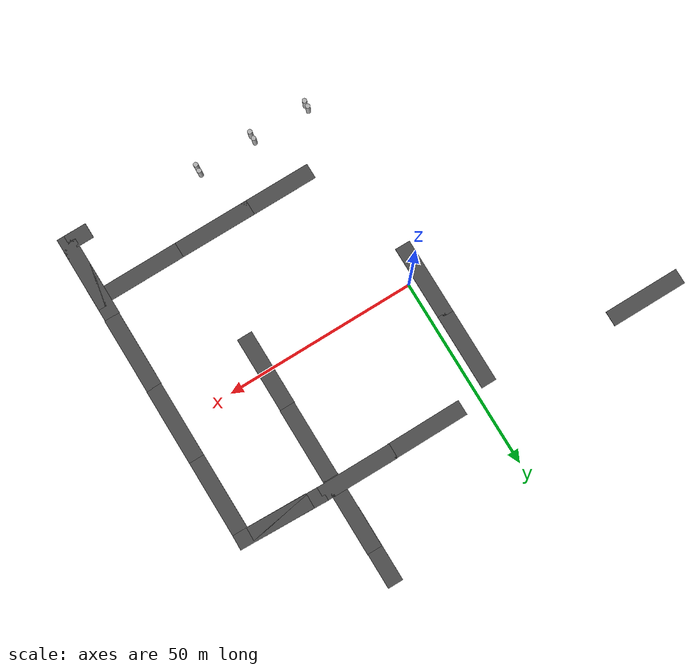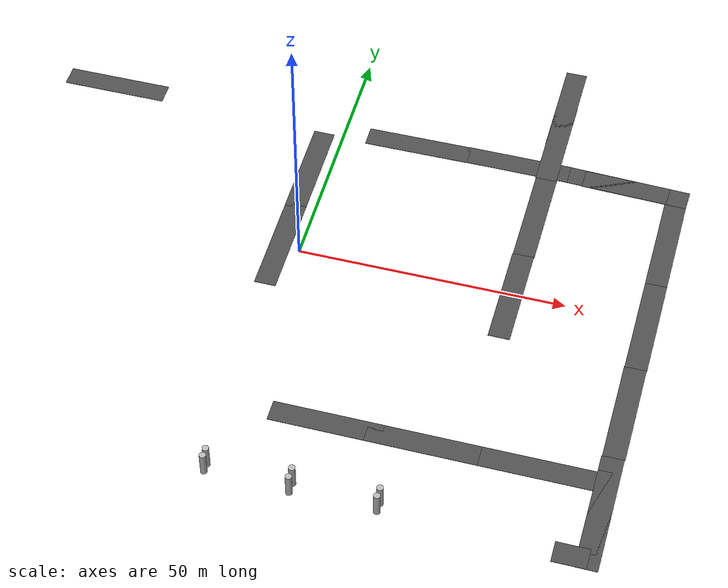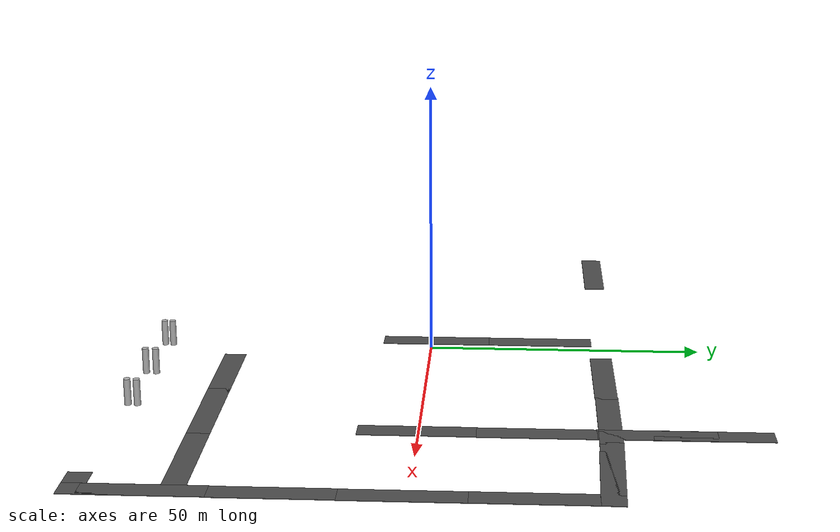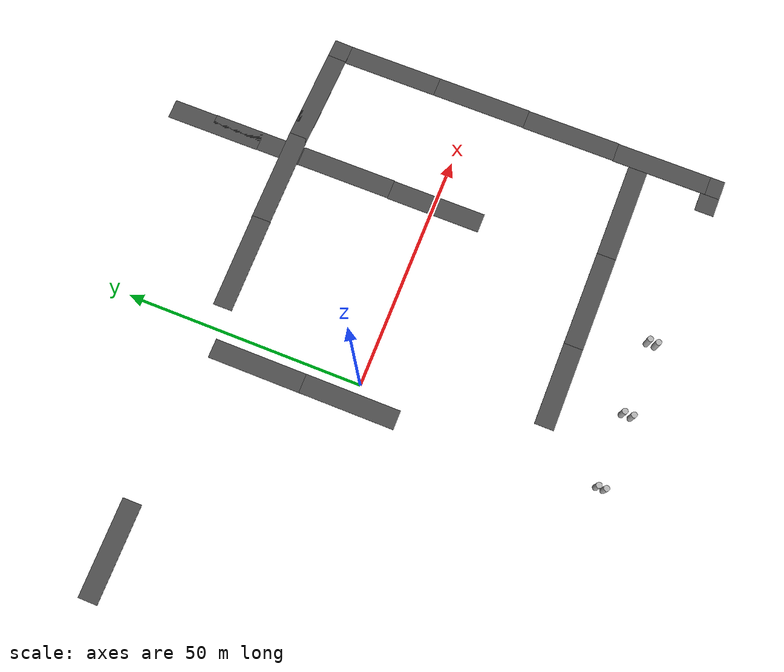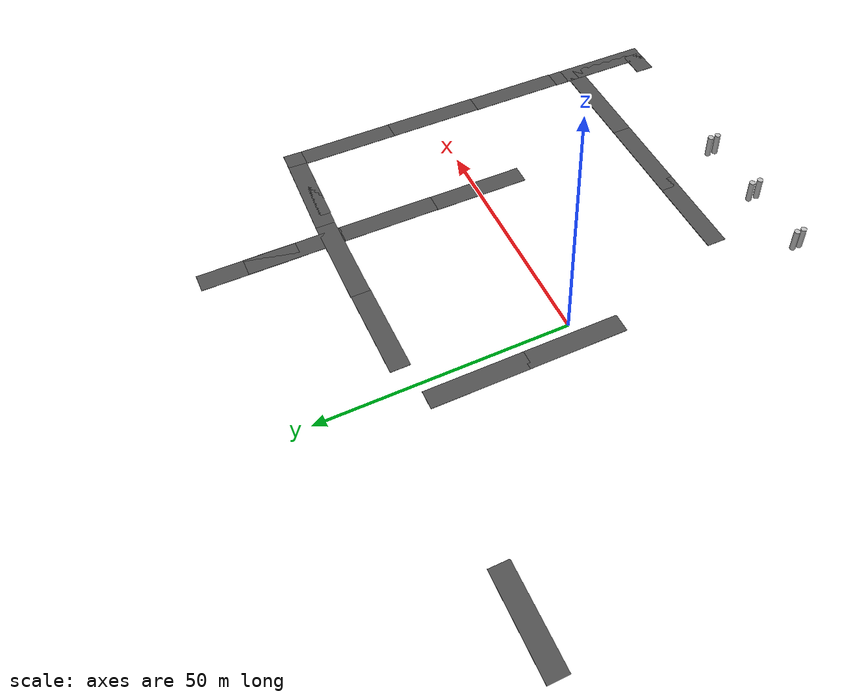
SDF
<sdf version="1.10">
 <world name="default">
  <model name="asphalt_plane_3">
   <static>true</static>
   <link name="link">
    <collision name="collision"><geometry><box><size>20 4 0.10000000000000001</size></box></geometry></collision>
    <visual name="visual">
     <cast_shadows>false</cast_shadows>
     <geometry><box><size>20 4 0.10000000000000001</size></box></geometry>
     <material>
      <script>
       <uri>https://fuel.gazebosim.org/1.0/openrobotics/models/asphalt plane/3/files/materials/scripts</uri>
       <uri>https://fuel.gazebosim.org/1.0/openrobotics/models/asphalt plane/3/files/materials/textures</uri>
       <name>vrc/asphalt</name>
      </script>
     </material>
    </visual>
    <inertial>
     <mass>1</mass>
     <inertia><ixx>1</ixx><ixy>0</ixy><ixz>0</ixz><iyy>1</iyy><iyz>0</iyz><izz>1</izz></inertia>
    </inertial>
   </link>
   <pose>14.530110359191895 31.741804122924805 0.10000000000000001 0 0 0.0044157601731133434</pose>
  </model>
  <model name="asphalt_plane_4">
   <static>true</static>
   <link name="link">
    <collision name="collision"><geometry><box><size>20 4 0.10000000000000001</size></box></geometry></collision>
    <visual name="visual">
     <cast_shadows>false</cast_shadows>
     <geometry><box><size>20 4 0.10000000000000001</size></box></geometry>
     <material>
      <script>
       <uri>https://fuel.gazebosim.org/1.0/openrobotics/models/asphalt plane/3/files/materials/scripts</uri>
       <uri>https://fuel.gazebosim.org/1.0/openrobotics/models/asphalt plane/3/files/materials/textures</uri>
       <name>vrc/asphalt</name>
      </script>
     </material>
    </visual>
    <inertial>
     <mass>1</mass>
     <inertia><ixx>1</ixx><ixy>0</ixy><ixz>0</ixz><iyy>1</iyy><iyz>0</iyz><izz>1</izz></inertia>
    </inertial>
   </link>
   <pose>34.047901153564453 31.812299728393555 0.10000000000000001 0 0 -0.0038311104937279301</pose>
  </model>
  <model name="asphalt_plane_5">
   <static>true</static>
   <link name="link">
    <collision name="collision"><geometry><box><size>20 4 0.10000000000000001</size></box></geometry></collision>
    <visual name="visual">
     <cast_shadows>false</cast_shadows>
     <geometry><box><size>20 4 0.10000000000000001</size></box></geometry>
     <material>
      <script>
       <uri>https://fuel.gazebosim.org/1.0/openrobotics/models/asphalt plane/3/files/materials/scripts</uri>
       <uri>https://fuel.gazebosim.org/1.0/openrobotics/models/asphalt plane/3/files/materials/textures</uri>
       <name>vrc/asphalt</name>
      </script>
     </material>
    </visual>
    <inertial>
     <mass>1</mass>
     <inertia><ixx>1</ixx><ixy>0</ixy><ixz>0</ixz><iyy>1</iyy><iyz>0</iyz><izz>1</izz></inertia>
    </inertial>
   </link>
   <pose>53.204425811767578 31.432657241821289 0.10000000000000001 0 0 -0.035102299478958522</pose>
  </model>
  <model name="asphalt_plane_6">
   <static>true</static>
   <link name="link">
    <collision name="collision"><geometry><box><size>20 4 0.10000000000000001</size></box></geometry></collision>
    <visual name="visual">
     <cast_shadows>false</cast_shadows>
     <geometry><box><size>20 4 0.10000000000000001</size></box></geometry>
     <material>
      <script>
       <uri>https://fuel.gazebosim.org/1.0/openrobotics/models/asphalt plane/3/files/materials/scripts</uri>
       <uri>https://fuel.gazebosim.org/1.0/openrobotics/models/asphalt plane/3/files/materials/textures</uri>
       <name>vrc/asphalt</name>
      </script>
     </material>
    </visual>
    <inertial>
     <mass>1</mass>
     <inertia><ixx>1</ixx><ixy>0</ixy><ixz>0</ixz><iyy>1</iyy><iyz>0</iyz><izz>1</izz></inertia>
    </inertial>
   </link>
   <pose>56.973941802978516 31.258821487426758 0.10000000000000001 0 0 -0.030759699327713306</pose>
  </model>
  <model name="asphalt_plane_13">
   <static>true</static>
   <link name="link">
    <collision name="collision"><geometry><box><size>4 20 0.10000000000000001</size></box></geometry></collision>
    <visual name="visual">
     <cast_shadows>false</cast_shadows>
     <geometry><box><size>4 20 0.10000000000000001</size></box></geometry>
     <material>
      <script>
       <uri>https://fuel.gazebosim.org/1.0/openrobotics/models/asphalt plane/3/files/materials/scripts</uri>
       <uri>https://fuel.gazebosim.org/1.0/openrobotics/models/asphalt plane/3/files/materials/textures</uri>
       <name>vrc/asphalt</name>
      </script>
     </material>
    </visual>
    <inertial>
     <mass>1</mass>
     <inertia><ixx>1</ixx><ixy>0</ixy><ixz>0</ixz><iyy>1</iyy><iyz>0</iyz><izz>1</izz></inertia>
    </inertial>
   </link>
   <pose>40.065200805664062 39.448524475097656 0.10000000000000001 0 0 0</pose>
  </model>
  <model name="asphalt_plane_14">
   <static>true</static>
   <link name="link">
    <collision name="collision"><geometry><box><size>4 20 0.10000000000000001</size></box></geometry></collision>
    <visual name="visual">
     <cast_shadows>false</cast_shadows>
     <geometry><box><size>4 20 0.10000000000000001</size></box></geometry>
     <material>
      <script>
       <uri>https://fuel.gazebosim.org/1.0/openrobotics/models/asphalt plane/3/files/materials/scripts</uri>
       <uri>https://fuel.gazebosim.org/1.0/openrobotics/models/asphalt plane/3/files/materials/textures</uri>
       <name>vrc/asphalt</name>
      </script>
     </material>
    </visual>
    <inertial>
     <mass>1</mass>
     <inertia><ixx>1</ixx><ixy>0</ixy><ixz>0</ixz><iyy>1</iyy><iyz>0</iyz><izz>1</izz></inertia>
    </inertial>
   </link>
   <pose>40.003288269042969 48.785900115966797 0.10000000000000001 0 0 0</pose>
  </model>
  <model name="asphalt_plane_15">
   <static>true</static>
   <link name="link">
    <collision name="collision"><geometry><box><size>4 20 0.10000000000000001</size></box></geometry></collision>
    <visual name="visual">
     <cast_shadows>false</cast_shadows>
     <geometry><box><size>4 20 0.10000000000000001</size></box></geometry>
     <material>
      <script>
       <uri>https://fuel.gazebosim.org/1.0/openrobotics/models/asphalt plane/3/files/materials/scripts</uri>
       <uri>https://fuel.gazebosim.org/1.0/openrobotics/models/asphalt plane/3/files/materials/textures</uri>
       <name>vrc/asphalt</name>
      </script>
     </material>
    </visual>
    <inertial>
     <mass>1</mass>
     <inertia><ixx>1</ixx><ixy>0</ixy><ixz>0</ixz><iyy>1</iyy><iyz>0</iyz><izz>1</izz></inertia>
    </inertial>
   </link>
   <pose>64.909599304199219 19.035907745361328 0.10000000000000001 0 0 0</pose>
  </model>
  <model name="asphalt_plane_16">
   <static>true</static>
   <link name="link">
    <collision name="collision"><geometry><box><size>4 20 0.10000000000000001</size></box></geometry></collision>
    <visual name="visual">
     <cast_shadows>false</cast_shadows>
     <geometry><box><size>4 20 0.10000000000000001</size></box></geometry>
     <material>
      <script>
       <uri>https://fuel.gazebosim.org/1.0/openrobotics/models/asphalt plane/3/files/materials/scripts</uri>
       <uri>https://fuel.gazebosim.org/1.0/openrobotics/models/asphalt plane/3/files/materials/textures</uri>
       <name>vrc/asphalt</name>
      </script>
     </material>
    </visual>
    <inertial>
     <mass>1</mass>
     <inertia><ixx>1</ixx><ixy>0</ixy><ixz>0</ixz><iyy>1</iyy><iyz>0</iyz><izz>1</izz></inertia>
    </inertial>
   </link>
   <pose>64.915397644042969 -0.956828773021698 0.10000000000000001 0 0 0</pose>
  </model>
  <model name="asphalt_plane_17">
   <static>true</static>
   <link name="link">
    <collision name="collision"><geometry><box><size>4 20 0.10000000000000001</size></box></geometry></collision>
    <visual name="visual">
     <cast_shadows>false</cast_shadows>
     <geometry><box><size>4 20 0.10000000000000001</size></box></geometry>
     <material>
      <script>
       <uri>https://fuel.gazebosim.org/1.0/openrobotics/models/asphalt plane/3/files/materials/scripts</uri>
       <uri>https://fuel.gazebosim.org/1.0/openrobotics/models/asphalt plane/3/files/materials/textures</uri>
       <name>vrc/asphalt</name>
      </script>
     </material>
    </visual>
    <inertial>
     <mass>1</mass>
     <inertia><ixx>1</ixx><ixy>0</ixy><ixz>0</ixz><iyy>1</iyy><iyz>0</iyz><izz>1</izz></inertia>
    </inertial>
   </link>
   <pose>64.841201782226562 -20.834541320800781 0.10000000000000001 0 0 0</pose>
  </model>
  <model name="asphalt_plane_18">
   <static>true</static>
   <link name="link">
    <collision name="collision"><geometry><box><size>4 20 0.10000000000000001</size></box></geometry></collision>
    <visual name="visual">
     <cast_shadows>false</cast_shadows>
     <geometry><box><size>4 20 0.10000000000000001</size></box></geometry>
     <material>
      <script>
       <uri>https://fuel.gazebosim.org/1.0/openrobotics/models/asphalt plane/3/files/materials/scripts</uri>
       <uri>https://fuel.gazebosim.org/1.0/openrobotics/models/asphalt plane/3/files/materials/textures</uri>
       <name>vrc/asphalt</name>
      </script>
     </material>
    </visual>
    <inertial>
     <mass>1</mass>
     <inertia><ixx>1</ixx><ixy>0</ixy><ixz>0</ixz><iyy>1</iyy><iyz>0</iyz><izz>1</izz></inertia>
    </inertial>
   </link>
   <pose>64.738609313964844 -40.751701354980469 0.10000000000000001 0 0 0</pose>
  </model>
  <model name="asphalt_plane">
   <static>true</static>
   <link name="link">
    <collision name="collision"><geometry><box><size>20 4 0.10000000000000001</size></box></geometry></collision>
    <visual name="visual">
     <cast_shadows>false</cast_shadows>
     <geometry><box><size>20 4 0.10000000000000001</size></box></geometry>
     <material>
      <script>
       <uri>https://fuel.gazebosim.org/1.0/openrobotics/models/asphalt plane/3/files/materials/scripts</uri>
       <uri>https://fuel.gazebosim.org/1.0/openrobotics/models/asphalt plane/3/files/materials/textures</uri>
       <name>vrc/asphalt</name>
      </script>
     </material>
    </visual>
    <inertial>
     <mass>1</mass>
     <inertia><ixx>1</ixx><ixy>0</ixy><ixz>0</ixz><iyy>1</iyy><iyz>0</iyz><izz>1</izz></inertia>
    </inertial>
   </link>
   <pose>-46.877128637557007 32.255424064310205 0.10000000000000001 0 0 0</pose>
  </model>
  <model name="asphalt_plane_28">
   <static>true</static>
   <link name="link">
    <collision name="collision"><geometry><box><size>20 4 0.10000000000000001</size></box></geometry></collision>
    <visual name="visual">
     <cast_shadows>false</cast_shadows>
     <geometry><box><size>20 4 0.10000000000000001</size></box></geometry>
     <material>
      <script>
       <uri>https://fuel.gazebosim.org/1.0/openrobotics/models/asphalt plane/3/files/materials/scripts</uri>
       <uri>https://fuel.gazebosim.org/1.0/openrobotics/models/asphalt plane/3/files/materials/textures</uri>
       <name>vrc/asphalt</name>
      </script>
     </material>
    </visual>
    <inertial>
     <mass>1</mass>
     <inertia><ixx>1</ixx><ixy>0</ixy><ixz>0</ixz><iyy>1</iyy><iyz>0</iyz><izz>1</izz></inertia>
    </inertial>
   </link>
   <pose>32.744171086946977 -36.31760450865837 0.10000000000000001 0 0 0</pose>
  </model>
  <model name="asphalt_plane_29">
   <static>true</static>
   <link name="link">
    <collision name="collision"><geometry><box><size>20 4 0.10000000000000001</size></box></geometry></collision>
    <visual name="visual">
     <cast_shadows>false</cast_shadows>
     <geometry><box><size>20 4 0.10000000000000001</size></box></geometry>
     <material>
      <script>
       <uri>https://fuel.gazebosim.org/1.0/openrobotics/models/asphalt plane/3/files/materials/scripts</uri>
       <uri>https://fuel.gazebosim.org/1.0/openrobotics/models/asphalt plane/3/files/materials/textures</uri>
       <name>vrc/asphalt</name>
      </script>
     </material>
    </visual>
    <inertial>
     <mass>1</mass>
     <inertia><ixx>1</ixx><ixy>0</ixy><ixz>0</ixz><iyy>1</iyy><iyz>0</iyz><izz>1</izz></inertia>
    </inertial>
   </link>
   <pose>52.731498718261719 -36.303199768066406 0.10000000000000001 0 0 0.0015346934484965276</pose>
  </model>
  <model name="cylinder_3">
   <pose>-1.7771536506278733 -51.071195532467783 1.6228393364744684 -9.0644935190132484e-08 -3.7545852622917469e-08 0.014815477646978121</pose>
   <link name="cylinder_link">
    <inertial>
     <inertia>
      <ixx>0.14580000000000001</ixx>
      <ixy>0</ixy>
      <ixz>0</ixz>
      <iyy>0.14580000000000001</iyy>
      <iyz>0</iyz>
      <izz>0.125</izz>
     </inertia>
     <mass>1</mass>
    </inertial>
    <collision name="cylinder_collision">
     <geometry><cylinder><radius>0.59999999999999998</radius><length>3</length></cylinder></geometry>
    </collision>
    <visual name="cylinder_visual">
     <geometry>
      <cylinder><radius>0.59999999999999998</radius><length>4.7999999999999998</length></cylinder>
     </geometry>
     <material>
      <ambient>0.300000012 0.300000012 0.300000012 1</ambient>
      <diffuse>0.699999988 0.699999988 0.699999988 1</diffuse>
      <specular>1 1 1 1</specular>
     </material>
    </visual>
   </link>
   <static>false</static>
  </model>
  <model name="cylinder_4">
   <pose>-1.7489922461739924 -49.555374079737199 1.6229107424014513 7.2864100027823631e-08 -3.1518761731173371e-08 -0.018471758809432724</pose>
   <link name="cylinder_link">
    <inertial>
     <inertia>
      <ixx>0.14580000000000001</ixx>
      <ixy>0</ixy>
      <ixz>0</ixz>
      <iyy>0.14580000000000001</iyy>
      <iyz>0</iyz>
      <izz>0.125</izz>
     </inertia>
     <mass>1</mass>
    </inertial>
    <collision name="cylinder_collision">
     <geometry><cylinder><radius>0.59999999999999998</radius><length>3</length></cylinder></geometry>
    </collision>
    <visual name="cylinder_visual">
     <geometry>
      <cylinder><radius>0.59999999999999998</radius><length>4.7999999999999998</length></cylinder>
     </geometry>
     <material>
      <ambient>0.300000012 0.300000012 0.300000012 1</ambient>
      <diffuse>0.699999988 0.699999988 0.699999988 1</diffuse>
      <specular>1 1 1 1</specular>
     </material>
    </visual>
   </link>
   <static>false</static>
  </model>
  <model name="cylinder_5">
   <pose>13.412348311698866 -51.447649751495028 1.6229511549376929 3.7253862009830115e-08 8.97346480466551e-08 6.5463508337902811e-05</pose>
   <link name="cylinder_link">
    <inertial>
     <inertia>
      <ixx>0.14580000000000001</ixx>
      <ixy>0</ixy>
      <ixz>0</ixz>
      <iyy>0.14580000000000001</iyy>
      <iyz>0</iyz>
      <izz>0.125</izz>
     </inertia>
     <mass>1</mass>
    </inertial>
    <collision name="cylinder_collision">
     <geometry><cylinder><radius>0.59999999999999998</radius><length>3</length></cylinder></geometry>
    </collision>
    <visual name="cylinder_visual">
     <geometry>
      <cylinder><radius>0.59999999999999998</radius><length>4.7999999999999998</length></cylinder>
     </geometry>
     <material>
      <ambient>0.300000012 0.300000012 0.300000012 1</ambient>
      <diffuse>0.699999988 0.699999988 0.699999988 1</diffuse>
      <specular>1 1 1 1</specular>
     </material>
    </visual>
   </link>
   <static>false</static>
  </model>
  <model name="cylinder_6">
   <pose>13.454820783813428 -49.583106147739095 1.6229511391869387 -6.5563768222032346e-08 -2.7157404124546711e-08 -0.007996962963949486</pose>
   <link name="cylinder_link">
    <inertial>
     <inertia>
      <ixx>0.14580000000000001</ixx>
      <ixy>0</ixy>
      <ixz>0</ixz>
      <iyy>0.14580000000000001</iyy>
      <iyz>0</iyz>
      <izz>0.125</izz>
     </inertia>
     <mass>1</mass>
    </inertial>
    <collision name="cylinder_collision">
     <geometry><cylinder><radius>0.59999999999999998</radius><length>3</length></cylinder></geometry>
    </collision>
    <visual name="cylinder_visual">
     <geometry>
      <cylinder><radius>0.59999999999999998</radius><length>4.7999999999999998</length></cylinder>
     </geometry>
     <material>
      <ambient>0.300000012 0.300000012 0.300000012 1</ambient>
      <diffuse>0.699999988 0.699999988 0.699999988 1</diffuse>
      <specular>1 1 1 1</specular>
     </material>
    </visual>
   </link>
   <static>false</static>
  </model>
  <model name="cylinder_7">
   <pose>28.670038613947117 -51.307185697460326 1.6229511380549617 6.8676812870199689e-08 1.8321280481656755e-10 -0.001768367282604201</pose>
   <link name="cylinder_link">
    <inertial>
     <inertia>
      <ixx>0.14580000000000001</ixx>
      <ixy>0</ixy>
      <ixz>0</ixz>
      <iyy>0.14580000000000001</iyy>
      <iyz>0</iyz>
      <izz>0.125</izz>
     </inertia>
     <mass>1</mass>
    </inertial>
    <collision name="cylinder_collision">
     <geometry><cylinder><radius>0.59999999999999998</radius><length>3</length></cylinder></geometry>
    </collision>
    <visual name="cylinder_visual">
     <geometry>
      <cylinder><radius>0.59999999999999998</radius><length>4.7999999999999998</length></cylinder>
     </geometry>
     <material>
      <ambient>0.300000012 0.300000012 0.300000012 1</ambient>
      <diffuse>0.699999988 0.699999988 0.699999988 1</diffuse>
      <specular>1 1 1 1</specular>
     </material>
    </visual>
   </link>
   <static>false</static>
  </model>
  <model name="cylinder_8">
   <pose>28.747786783944797 -49.621735090254504 1.6229501370635415 7.0591088482205813e-08 2.9928470720588637e-10 0.0058203547320337034</pose>
   <link name="cylinder_link">
    <inertial>
     <inertia>
      <ixx>0.14580000000000001</ixx>
      <ixy>0</ixy>
      <ixz>0</ixz>
      <iyy>0.14580000000000001</iyy>
      <iyz>0</iyz>
      <izz>0.125</izz>
     </inertia>
     <mass>1</mass>
    </inertial>
    <collision name="cylinder_collision">
     <geometry><cylinder><radius>0.59999999999999998</radius><length>3</length></cylinder></geometry>
    </collision>
    <visual name="cylinder_visual">
     <geometry>
      <cylinder><radius>0.59999999999999998</radius><length>4.7999999999999998</length></cylinder>
     </geometry>
     <material>
      <ambient>0.300000012 0.300000012 0.300000012 1</ambient>
      <diffuse>0.699999988 0.699999988 0.699999988 1</diffuse>
      <specular>1 1 1 1</specular>
     </material>
    </visual>
   </link>
   <static>false</static>
  </model>
  <model name="asphalt_plane_32">
   <static>true</static>
   <link name="link">
    <collision name="collision"><geometry><box><size>4 20 0.10000000000000001</size></box></geometry></collision>
    <visual name="visual">
     <cast_shadows>false</cast_shadows>
     <geometry><box><size>4 20 0.10000000000000001</size></box></geometry>
     <material>
      <script>
       <uri>https://fuel.gazebosim.org/1.0/openrobotics/models/asphalt plane/3/files/materials/scripts</uri>
       <uri>https://fuel.gazebosim.org/1.0/openrobotics/models/asphalt plane/3/files/materials/textures</uri>
       <name>vrc/asphalt</name>
      </script>
     </material>
    </visual>
    <inertial>
     <mass>1</mass>
     <inertia><ixx>1</ixx><ixy>0</ixy><ixz>0</ixz><iyy>1</iyy><iyz>0</iyz><izz>1</izz></inertia>
    </inertial>
   </link>
   <pose>-3.7929732799530029 20.22599983215332 0.10000000000000001 0 0 0</pose>
  </model>
  <model name="asphalt_plane_33">
   <static>true</static>
   <link name="link">
    <collision name="collision"><geometry><box><size>4 20 0.10000000000000001</size></box></geometry></collision>
    <visual name="visual">
     <cast_shadows>false</cast_shadows>
     <geometry><box><size>4 20 0.10000000000000001</size></box></geometry>
     <material>
      <script>
       <uri>https://fuel.gazebosim.org/1.0/openrobotics/models/asphalt plane/3/files/materials/scripts</uri>
       <uri>https://fuel.gazebosim.org/1.0/openrobotics/models/asphalt plane/3/files/materials/textures</uri>
       <name>vrc/asphalt</name>
      </script>
     </material>
    </visual>
    <inertial>
     <mass>1</mass>
     <inertia><ixx>1</ixx><ixy>0</ixy><ixz>0</ixz><iyy>1</iyy><iyz>0</iyz><izz>1</izz></inertia>
    </inertial>
   </link>
   <pose>-3.7779326438903809 0.81530600786209106 0.10000000000000001 0 0 0</pose>
  </model>
  <model name="asphalt_plane_34">
   <static>true</static>
   <link name="link">
    <collision name="collision"><geometry><box><size>4 20 0.10000000000000001</size></box></geometry></collision>
    <visual name="visual">
     <cast_shadows>false</cast_shadows>
     <geometry><box><size>4 20 0.10000000000000001</size></box></geometry>
     <material>
      <script>
       <uri>https://fuel.gazebosim.org/1.0/openrobotics/models/asphalt plane/3/files/materials/scripts</uri>
       <uri>https://fuel.gazebosim.org/1.0/openrobotics/models/asphalt plane/3/files/materials/textures</uri>
       <name>vrc/asphalt</name>
      </script>
     </material>
    </visual>
    <inertial>
     <mass>1</mass>
     <inertia><ixx>1</ixx><ixy>0</ixy><ixz>0</ixz><iyy>1</iyy><iyz>0</iyz><izz>1</izz></inertia>
    </inertial>
   </link>
   <pose>40.150882720947266 19.589000701904297 0.10000000000000001 0 0 0</pose>
  </model>
  <model name="asphalt_plane_35">
   <static>true</static>
   <link name="link">
    <collision name="collision"><geometry><box><size>4 20 0.10000000000000001</size></box></geometry></collision>
    <visual name="visual">
     <cast_shadows>false</cast_shadows>
     <geometry><box><size>4 20 0.10000000000000001</size></box></geometry>
     <material>
      <script>
       <uri>https://fuel.gazebosim.org/1.0/openrobotics/models/asphalt plane/3/files/materials/scripts</uri>
       <uri>https://fuel.gazebosim.org/1.0/openrobotics/models/asphalt plane/3/files/materials/textures</uri>
       <name>vrc/asphalt</name>
      </script>
     </material>
    </visual>
    <inertial>
     <mass>1</mass>
     <inertia><ixx>1</ixx><ixy>0</ixy><ixz>0</ixz><iyy>1</iyy><iyz>0</iyz><izz>1</izz></inertia>
    </inertial>
   </link>
   <pose>40.05316162109375 -0.25200200080871582 0.10000000000000001 0 0 0</pose>
  </model>
  <model name="asphalt_plane_37">
   <static>true</static>
   <link name="link">
    <collision name="collision"><geometry><box><size>4 20 0.10000000000000001</size></box></geometry></collision>
    <visual name="visual">
     <cast_shadows>false</cast_shadows>
     <geometry><box><size>4 20 0.10000000000000001</size></box></geometry>
     <material>
      <script>
       <uri>https://fuel.gazebosim.org/1.0/openrobotics/models/asphalt plane/3/files/materials/scripts</uri>
       <uri>https://fuel.gazebosim.org/1.0/openrobotics/models/asphalt plane/3/files/materials/textures</uri>
       <name>vrc/asphalt</name>
      </script>
     </material>
    </visual>
    <inertial>
     <mass>1</mass>
     <inertia><ixx>1</ixx><ixy>0</ixy><ixz>0</ixz><iyy>1</iyy><iyz>0</iyz><izz>1</izz></inertia>
    </inertial>
   </link>
   <pose>64.730400085449219 -43.835109710693359 0.10000000000000001 0 0 0</pose>
  </model>
  <model name="asphalt_plane_27">
   <static>true</static>
   <link name="link">
    <collision name="collision"><geometry><box><size>20 4 0.10000000000000001</size></box></geometry></collision>
    <visual name="visual">
     <cast_shadows>false</cast_shadows>
     <geometry><box><size>20 4 0.10000000000000001</size></box></geometry>
     <material>
      <script>
       <uri>https://fuel.gazebosim.org/1.0/openrobotics/models/asphalt plane/3/files/materials/scripts</uri>
       <uri>https://fuel.gazebosim.org/1.0/openrobotics/models/asphalt plane/3/files/materials/textures</uri>
       <name>vrc/asphalt</name>
      </script>
     </material>
    </visual>
    <inertial>
     <mass>1</mass>
     <inertia><ixx>1</ixx><ixy>0</ixy><ixz>0</ixz><iyy>1</iyy><iyz>0</iyz><izz>1</izz></inertia>
    </inertial>
   </link>
   <pose>15.489812623602063 -36.309740767331981 0.10000000000000001 0 0 0</pose>
  </model>
  <model name="asphalt_plane_39">
   <static>true</static>
   <link name="link">
    <collision name="collision"><geometry><box><size>6 4 0.10000000000000001</size></box></geometry></collision>
    <visual name="visual">
     <cast_shadows>false</cast_shadows>
     <geometry><box><size>6 4 0.10000000000000001</size></box></geometry>
     <material>
      <script>
       <uri>https://fuel.gazebosim.org/1.0/openrobotics/models/asphalt plane/3/files/materials/scripts</uri>
       <uri>https://fuel.gazebosim.org/1.0/openrobotics/models/asphalt plane/3/files/materials/textures</uri>
       <name>vrc/asphalt</name>
      </script>
     </material>
    </visual>
    <inertial>
     <mass>1</mass>
     <inertia><ixx>1</ixx><ixy>0</ixy><ixz>0</ixz><iyy>1</iyy><iyz>0</iyz><izz>1</izz></inertia>
    </inertial>
   </link>
   <pose>61.7843017578125 -51.822517395019531 0.10000000000000001 0 0 0</pose>
  </model>
 </world>
</sdf>
